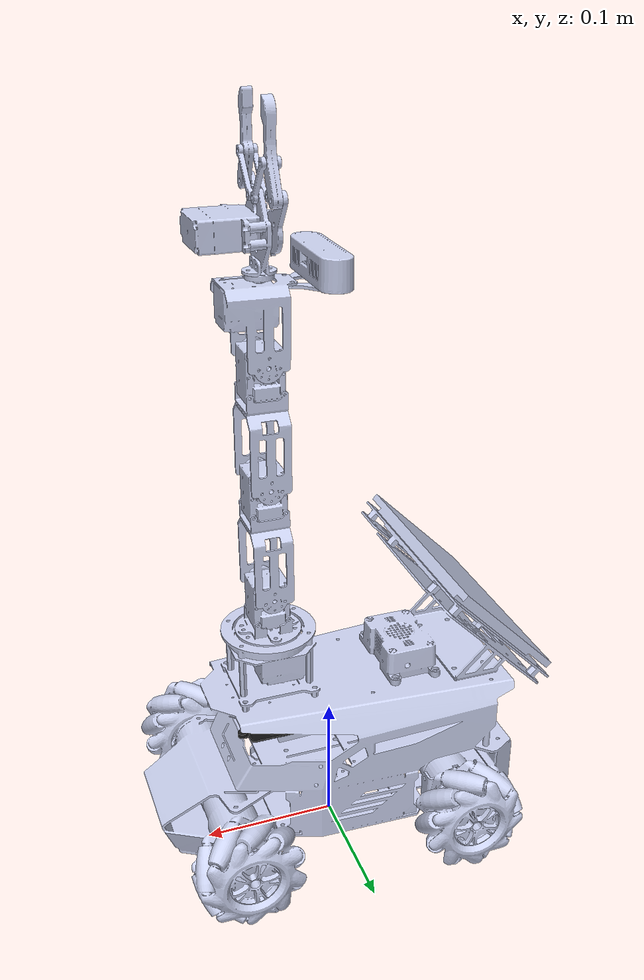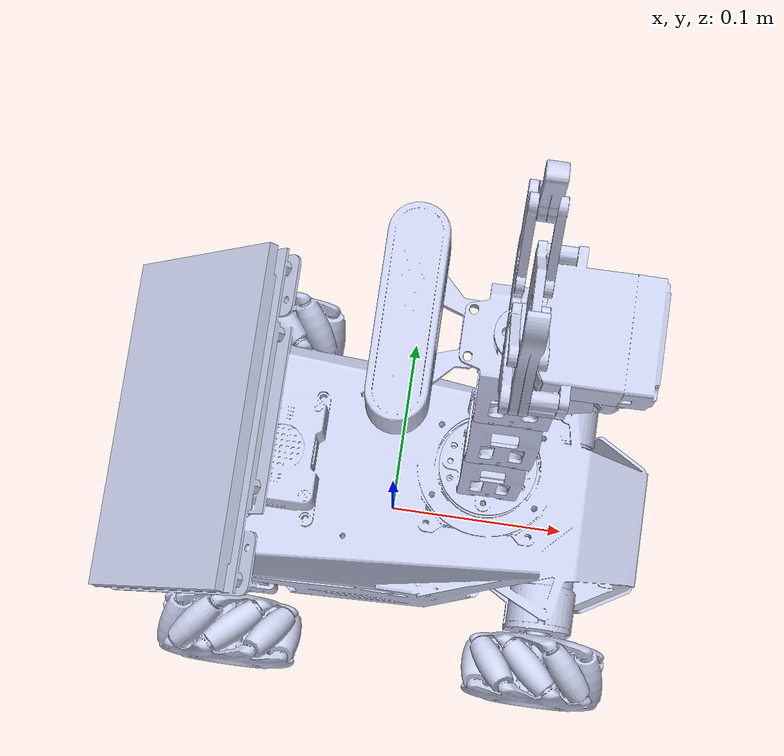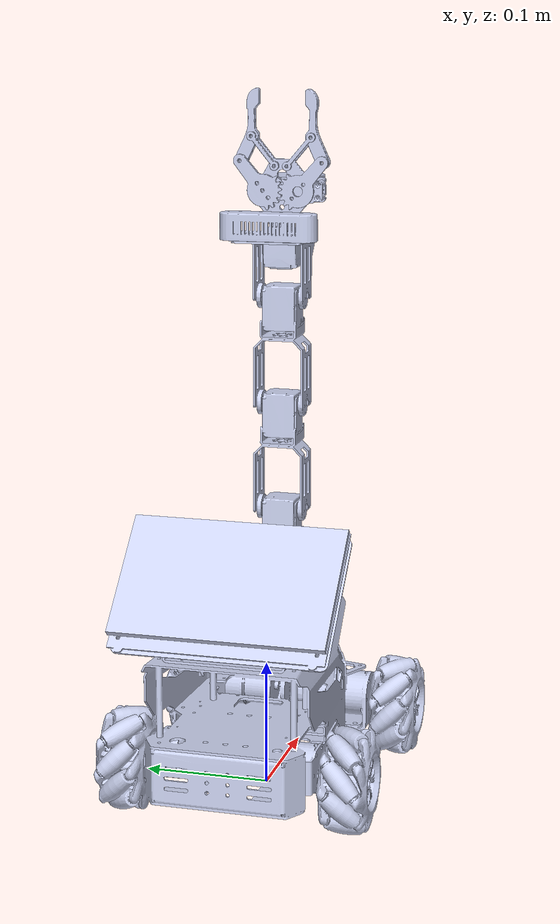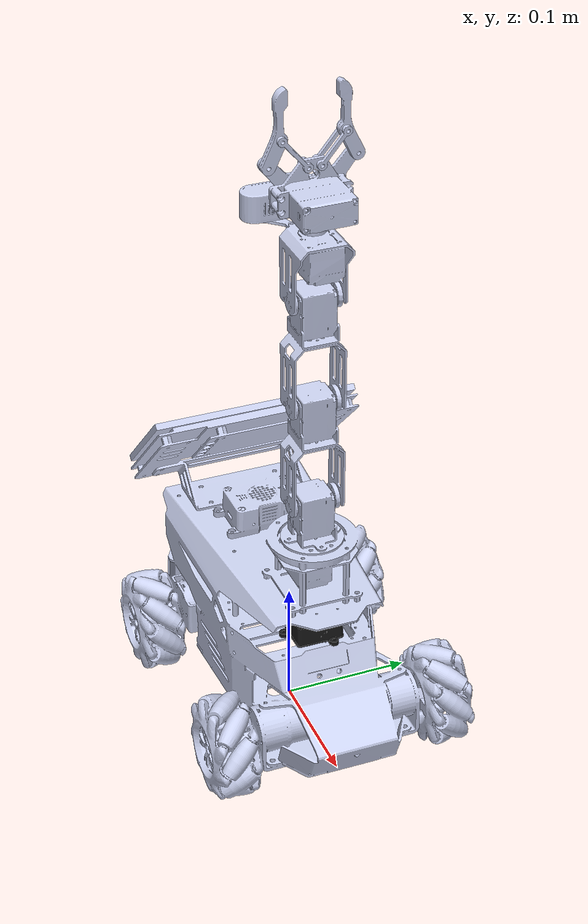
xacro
<?xml version="1.0" encoding="utf-8"?>
<robot name="rosorinpro" xmlns:xacro="http://ros.org/wiki/xacro">
    <xacro:arg name="prefix" default="" />
    <xacro:property name="lidar"        value="$(env LIDAR_TYPE)"/>
    <xacro:property name="machine"      value="$(env MACHINE_TYPE)"/>

    <xacro:include filename="$(find rosorin_description)/urdf/pro/inertial_matrix.xacro" />

    <xacro:include filename="$(find rosorin_description)/urdf/pro/car_mecanum.urdf.xacro"/>
    <xacro:include filename="$(find rosorin_description)/urdf/pro/lidar.urdf.xacro"/>

    <xacro:include filename="$(find rosorin_description)/urdf/pro/imu.urdf.xacro"/>
    <xacro:include filename="$(find rosorin_description)/urdf/pro/depth_camera.urdf.xacro"/>
    <xacro:include filename="$(find rosorin_description)/urdf/pro/arm.urdf.xacro"/>
    <xacro:include filename="$(find rosorin_description)/urdf/pro/gripper.urdf.xacro"/>
</robot>

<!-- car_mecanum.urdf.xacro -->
<robot name="car" xmlns:xacro="http://ros.org/wiki/xacro" >
  <xacro:arg name="prefix" default="" />
  <xacro:property name="M_PI"               value="3.1415926535897931"/>
  <xacro:property name="base_link_mass"     value="1.6" />
  <xacro:property name="base_link_w"        value="0.30"/>
  <xacro:property name="base_link_h"        value="0.15"/>
  <xacro:property name="base_link_d"        value="0.10"/>

  <link name="$(arg prefix)base_footprint"/>

  <joint name="base_joint" type="fixed">
    <parent link="$(arg prefix)base_footprint"/>
    <child link="$(arg prefix)base_link"/>
    <origin xyz="0.0 0.0 0.025" rpy="0 0 0"/>
  </joint>

  <link name="$(arg prefix)base_link">
    <inertial>
      <origin
        xyz="-0.0237400546330076 0.000105827287484879 0.066822140954233"
        rpy="0 0 0" />
      <mass
        value="0.808717142384399" />
      <inertia
        ixx="0.00081122049060922"
        ixy="-5.06387672227193E-07"
        ixz="-4.14284146512215E-05"
        iyy="0.000953001506912848"
        iyz="1.4848181298352E-07"
        izz="0.00147516785852103" />
    </inertial>

    <visual>
      <origin
        xyz="0 0 0"
        rpy="0 0 0" />
      <geometry>
        <mesh
          filename="package://rosorin_description/meshes/pro/mecanum/base_link.stl" />
      </geometry>
      <material name="">
        <color rgba="0.792156862745098 0.819607843137255 0.933333333333333 1" />
      </material>
    </visual>

    <collision>
      <origin
        xyz="0 0 0"
        rpy="0 0 0" />
      <geometry>
        <mesh
          filename="package://rosorin_description/meshes/pro/mecanum/base_link.stl" />
      </geometry>
    </collision>
  </link>
</robot>

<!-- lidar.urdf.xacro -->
<robot name="lidar" xmlns:xacro="http://ros.org/wiki/xacro" >
  <xacro:arg name="prefix" default="" />
  <xacro:property name="M_PI" value="3.1415926535897931"/>

  <link name="$(arg prefix)lidar_frame">
    <inertial>
      <origin
        xyz="0.000108272881438547 0.000207778482328322 -0.0259979873399523"
        rpy="0 0 0" />
      <mass
        value="0.0222221884545253" />
      <inertia
        ixx="2.86596904176027E-06"
        ixy="-1.446571060778E-07"
        ixz="1.97432308518389E-09"
        iyy="2.97121650480506E-06"
        iyz="1.02426609298088E-08"
        izz="5.05108782428573E-06" />
    </inertial>

    <visual>
      <origin
        xyz="0 0 0"
        rpy="0 0 0" />
      <geometry>
        <mesh
          filename="package://rosorin_description/meshes/pro/common/lidar_link.stl" />
      </geometry>
      <material name="black">
        <color rgba="0.1 0.1 0.1 1" />
      </material>
    </visual>

    <collision>
      <origin
        xyz="0 0 0"
        rpy="0 0 0" />
      <geometry>
        <mesh
          filename="package://rosorin_description/meshes/pro/common/lidar_link.stl" />
      </geometry>
    </collision>
  </link>

  <joint name="lidar_joint" type="fixed">
    <origin
      xyz="0.048156 7.5552E-05 0.106748"
      rpy="0 0 3.1415926535897931" />
    <parent link="$(arg prefix)base_link" />
    <child link="$(arg prefix)lidar_frame" />
    <axis xyz="0 0 0" />
  </joint>
</robot>

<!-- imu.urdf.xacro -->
<robot name="imu" xmlns:xacro="http://ros.org/wiki/xacro">
  <xacro:arg name="prefix" default="" />
  <xacro:property name="M_PI" value="3.1415926535897931"/>

  <link name="$(arg prefix)imu_link">
    <inertial>
      <origin
        xyz="0.000326339719654111 -0.00351781801658763 0.0187735276751056"
        rpy="0 0 0" />
      <mass
        value="0.808717142384399" />
      <inertia
        ixx="0.000953043729407075"
        ixy="8.78702843605923E-07"
        ixz="4.70183220493712E-06"
        iyy="0.000811220623674811"
        iyz="4.14227763073151E-05"
        izz="0.00147512550296121" />
    </inertial>
  </link>

  <joint
    name="imu_joint"
    type="fixed">
    <origin
      xyz="-0.027258 -5.6404E-05 0.048046"
      rpy="0 -0.0087266 1.5707" />
    <parent
      link="$(arg prefix)base_link" />
    <child
      link="$(arg prefix)imu_link" />
    <axis
      xyz="0 0 0" />
  </joint>

</robot>

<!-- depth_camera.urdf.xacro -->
<robot name="depth_camera" xmlns:xacro="http://ros.org/wiki/xacro" >
  <xacro:arg name="prefix" default="" />
  <xacro:property name="M_PI"   value="3.1415926535897931"/>

  <link
    name="$(arg prefix)camera_link0">
    <inertial>
      <origin
        xyz="0.00100057615929594 1.44605534389223E-07 1.72427634361517E-05"
        rpy="0 0 0" />
      <mass
        value="0.00214314154275933" />
      <inertia
        ixx="6.71206631524409E-07"
        ixy="2.63926007533042E-11"
        ixz="2.74382798718986E-09"
        iyy="1.80398903028185E-07"
        iyz="2.56942330882973E-09"
        izz="4.92322343252228E-07" />
    </inertial>
    <visual>
      <origin
        xyz="0 0 0"
        rpy="0 0 0" />
      <geometry>
        <mesh
          filename="package://rosorin_description/meshes/pro/arm/camera_connect_link.stl" />
      </geometry>
      <material
        name="">
        <color
          rgba="0.792156862745098 0.819607843137255 0.933333333333333 1" />
      </material>
    </visual>
    <collision>
      <origin
        xyz="0 0 0"
        rpy="0 0 0" />
      <geometry>
        <mesh
          filename="package://rosorin_description/meshes/pro/arm/camera_connect_link.stl" />
      </geometry>
    </collision>
  </link>

  <joint
    name="camera_connect_joint"
    type="fixed">
    <origin
      xyz="-0.036369 -0.0181 0.046638"
      rpy="-1.5621 -1.5621 1.5708" />
    <parent
      link="$(arg prefix)link4" />
    <child
      link="$(arg prefix)camera_link0" />
    <axis
      xyz="0 0 0" />
  </joint>

  <link
    name="$(arg prefix)camera_link">
    <inertial>
      <origin
        xyz="-0.0104111613223142 0.00065478513128311 -0.000176533763583344"
        rpy="0 0 0" />
      <mass
        value="0.00987601981944819" />
      <inertia
        ixx="6.06474620230947E-06"
        ixy="6.71140396207728E-09"
        ixz="2.66834042514805E-09"
        iyy="6.67626406550825E-07"
        iyz="4.50123409985515E-08"
        izz="5.75254791481401E-06" />
    </inertial>
    <visual>
      <origin
        xyz="0 0 0"
        rpy="0 0 0" />
      <geometry>
        <mesh
          filename="package://rosorin_description/meshes/pro/arm/camera_link.stl" />
      </geometry>
      <material
        name="">
        <color
          rgba="0.792156862745098 0.819607843137255 0.933333333333333 1" />
      </material>
    </visual>
    <collision>
      <origin
        xyz="0 0 0"
        rpy="0 0 0" />
      <geometry>
        <mesh
          filename="package://rosorin_description/meshes/pro/arm/camera_link.stl" />
      </geometry>
    </collision>
  </link>

  <joint
    name="camera_joint"
    type="fixed">
    <origin
      xyz="0.022511 -0.0010257 0.0051917"
      rpy="0 0 0" />
    <parent
      link="$(arg prefix)camera_link0" />
    <child
      link="$(arg prefix)camera_link" />
    <axis
      xyz="0 0 0" />
  </joint>

  <link name="$(arg prefix)depth_cam_frame" />
  <joint
    name="depth_cam_joint_sim"
    type="fixed">
    <origin
      xyz="0 0 0"
      rpy="${-M_PI/2} 0 ${-M_PI/2}" />
    <parent
      link="$(arg prefix)camera_link" />
    <child
      link="$(arg prefix)depth_cam_frame" />
  </joint>

</robot>

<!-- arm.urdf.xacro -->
<robot name="arm" xmlns:xacro="http://ros.org/wiki/xacro">
  <xacro:arg name="prefix" default="" />
  <xacro:property name="M_PI"   value="3.1415926535897931"/>

  <link
    name="$(arg prefix)link1">
    <inertial>
      <origin
        xyz="6.49037759326426E-05 0.00239407542452911 0.0110195047829908"
        rpy="0 0 0" />
      <mass
        value="0.010597277181335" />
      <inertia
        ixx="1.46240263881777E-06"
        ixy="-4.78262881626278E-09"
        ixz="7.11910436984689E-09"
        iyy="1.81010848614845E-06"
        iyz="-2.88588688247835E-08"
        izz="1.87119457153925E-06" />
    </inertial>
    <visual>
      <origin
        xyz="0 0 0"
        rpy="0 0 0" />
      <geometry>
        <mesh
          filename="file://$(find rosorin_description)/meshes/pro/arm/link1.stl" />
      </geometry>
      <material
        name="">
        <color
          rgba="0.792156862745098 0.819607843137255 0.933333333333333 1" />
      </material>
    </visual>
    <collision>
      <origin
        xyz="0 0 0"
        rpy="0 0 0" />
      <geometry>
        <mesh
          filename="file://$(find rosorin_description)/meshes/pro/arm/link1.stl" />
      </geometry>
    </collision>
  </link>

  <gazebo reference="$(arg prefix)base_link">
    <material>Gazebo/Grey</material>
    <mu1>0.2</mu1>
    <mu2>0.2</mu2>
    <self_collide>false</self_collide>
  </gazebo>

  <joint
    name="joint1"
    type="revolute">
    <origin
      xyz="0.04662 7.5437E-05 0.16044"
      rpy="0.0087266 0 0" />
    <parent
      link="$(arg prefix)base_link" />
    <child
      link="$(arg prefix)link1" />
    <axis
      xyz="-5.4513E-05 -0.0087266 -0.99996" />
    <limit
      lower="-2.09"
      upper="2.09"
      effort="1000"
      velocity="10" />
  </joint>

  <link
    name="$(arg prefix)link2">
    <inertial>
      <origin
        xyz="0.000202046656795941 -0.0165522680567203 0.0481618179233159"
        rpy="0 0 0" />
      <mass
        value="0.0136322197327749" />
      <inertia
        ixx="3.65656868148961E-06"
        ixy="-4.89058741962216E-09"
        ixz="3.19797719203556E-09"
        iyy="3.1366082581851E-06"
        iyz="-3.55846346498633E-08"
        izz="2.4183678227792E-06" />
    </inertial>
    <visual>
      <origin
        xyz="0 0 0"
        rpy="0 0 0" />
      <geometry>
        <mesh
          filename="file://$(find rosorin_description)/meshes/pro/arm/link2.stl" />
      </geometry>
      <material
        name="">
        <color
          rgba="0.792156862745098 0.819607843137255 0.933333333333333 1" />
      </material>
    </visual>
    <collision>
      <origin
        xyz="0 0 0"
        rpy="0 0 0" />
      <geometry>
        <mesh
          filename="file://$(find rosorin_description)/meshes/pro/arm/link2.stl" />
      </geometry>
    </collision>
  </link>

  <joint
    name="joint2"
    type="revolute">
    <origin
      xyz="1.2011E-05 0.018766 0.030345"
      rpy="0 0 0" />
    <parent
      link="$(arg prefix)link1" />
    <child
      link="$(arg prefix)link2" />
    <axis
      xyz="0 0.99996 -0.0087265" />
    <limit
      lower="-2.09"
      upper="2.09"
      effort="1000"
      velocity="10" />
  </joint>

  <link
    name="$(arg prefix)link3">
    <inertial>
      <origin
        xyz="-0.000248379360253626 -0.016552274463385 0.0481616278776934"
        rpy="0 0 0" />
      <mass
        value="0.0136322449843806" />
      <inertia
        ixx="3.65640771045542E-06"
        ixy="-4.52089983676596E-09"
        ixz="1.4805893818475E-08"
        iyy="3.13662596679787E-06"
        iyz="-3.5627525860988E-08"
        izz="2.41855475274639E-06" />
    </inertial>
    <visual>
      <origin
        xyz="0 0 0"
        rpy="0 0 0" />
      <geometry>
        <mesh
          filename="file://$(find rosorin_description)/meshes/pro/arm/link3.stl" />
      </geometry>
      <material
        name="">
        <color
          rgba="0.792156862745098 0.819607843137255 0.933333333333333 1" />
      </material>
    </visual>
    <collision>
      <origin
        xyz="0 0 0"
        rpy="0 0 0" />
      <geometry>
        <mesh
          filename="file://$(find rosorin_description)/meshes/pro/arm/link3.stl" />
      </geometry>
    </collision>
  </link>

  <joint
    name="joint3"
    type="revolute">
    <origin
      xyz="0.00025563 0.00074282 0.08513"
      rpy="0 0 0" />
    <parent
      link="$(arg prefix)link2" />
    <child
      link="$(arg prefix)link3" />
    <axis
      xyz="0 1 0" />
    <limit
      lower="-2.09"
      upper="2.09"
      effort="1000"
      velocity="10" />
  </joint>

  <link
    name="$(arg prefix)link4">
    <inertial>
      <origin
        xyz="0.00401889070001946 -0.0185055710062145 0.0267467820937604"
        rpy="0 0 0" />
      <mass
        value="0.0125542777381369" />
      <inertia
        ixx="3.42302406002793E-06"
        ixy="-8.26448821832188E-09"
        ixz="-1.3188503984044E-07"
        iyy="2.90651238927709E-06"
        iyz="8.54505947394019E-09"
        izz="3.34228552880687E-06" />
    </inertial>
    <visual>
      <origin
        xyz="0 0 0"
        rpy="0 0 0" />
      <geometry>
        <mesh
          filename="file://$(find rosorin_description)/meshes/pro/arm/link4.stl" />
      </geometry>
      <material
        name="">
        <color
          rgba="0.792156862745098 0.819607843137255 0.933333333333333 1" />
      </material>
    </visual>
    <collision>
      <origin
        xyz="0 0 0"
        rpy="0 0 0" />
      <geometry>
        <mesh
          filename="file://$(find rosorin_description)/meshes/pro/arm/link4.stl" />
      </geometry>
    </collision>
  </link>

  <joint
    name="joint4"
    type="revolute">
    <origin
      xyz="-0.00056892 0.00074297 0.085147"
      rpy="0 0 0" />
    <parent
      link="$(arg prefix)link3" />
    <child
      link="$(arg prefix)link4" />
    <axis
      xyz="0 1 0" />
    <limit
      lower="-2.09"
      upper="2.09"
      effort="1000"
      velocity="10" />
  </joint>

  <link
    name="$(arg prefix)link5">
    <inertial>
      <origin
        xyz="4.95037712668067E-06 9.72914927224386E-09 -0.0020019811095377"
        rpy="0 0 0" />
      <mass
        value="0.00094700314670666" />
      <inertia
        ixx="2.17248160164777E-08"
        ixy="3.02198013430078E-14"
        ixz="-4.76292817428858E-11"
        iyy="2.17243959579653E-08"
        iyz="7.04450794385081E-14"
        izz="4.04666808778697E-08" />
    </inertial>
    <visual>
      <origin
        xyz="0 0 0"
        rpy="0 0 0" />
      <geometry>
        <mesh
          filename="file://$(find rosorin_description)/meshes/pro/arm/link5.stl" />
      </geometry>
      <material
        name="">
        <color
          rgba="0.792156862745098 0.819607843137255 0.933333333333333 1" />
      </material>
    </visual>
    <collision>
      <origin
        xyz="0 0 0"
        rpy="0 0 0" />
      <geometry>
        <mesh
          filename="file://$(find rosorin_description)/meshes/pro/arm/link5.stl" />
      </geometry>
    </collision>
  </link>

  <joint
    name="joint5"
    type="revolute">
    <origin
      xyz="-0.0010116 -0.018014 0.05577"
      rpy="0 0 0" />
    <parent
      link="$(arg prefix)link4" />
    <child
      link="$(arg prefix)link5" />
    <axis
      xyz="0 0 -1" />
    <limit
      lower="-2.09"
      upper="2.09"
      effort="1000"
      velocity="10" />
  </joint>

  <link
    name="$(arg prefix)gripper_link">
    <inertial>
      <origin
        xyz="0.0231313386895878 -0.00393552713010837 -0.0156882339564593"
        rpy="0 0 0" />
      <mass
        value="0.0262978257351592" />
      <inertia
        ixx="3.95387110327665E-06"
        ixy="-1.19832857387574E-12"
        ixz="2.46427244487644E-12"
        iyy="1.3233558568295E-06"
        iyz="1.37213951357202E-08"
        izz="4.22515071659295E-06" />
    </inertial>
    <visual>
      <origin
        xyz="0 0 0"
        rpy="0 0 0" />
      <geometry>
        <mesh
          filename="file://$(find rosorin_description)/meshes/pro/arm/gripper_link.stl" />
      </geometry>
      <material
        name="">
        <color
          rgba="0.792156862745098 0.819607843137255 0.933333333333333 1" />
      </material>
    </visual>
    <collision>
      <origin
        xyz="0 0 0"
        rpy="0 0 0" />
      <geometry>
        <mesh
          filename="file://$(find rosorin_description)/meshes/pro/arm/gripper_link.stl" />
      </geometry>
    </collision>
  </link>

  <joint
    name="gripper_joint"
    type="fixed">
    <origin
      xyz="0 0 0.0030019"
      rpy="-3.1416 -1.5681 3.1416" />
    <parent
      link="$(arg prefix)link5" />
    <child
      link="$(arg prefix)gripper_link" />
    <axis
      xyz="0 0 0" />
  </joint>

  <link name="$(arg prefix)end_effector_link" />

  <joint name="end_effector_joint" type="fixed">
    <origin xyz="0 0 0.08" rpy="0 0 0"/>
    <parent link="$(arg prefix)link5"/>
    <child link="$(arg prefix)end_effector_link"/>
  </joint>

</robot>

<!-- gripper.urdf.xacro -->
<robot name="gripper" xmlns:xacro="http://ros.org/wiki/xacro">
  <xacro:arg name="prefix" default="" />
  <xacro:property name="M_PI"   value="3.1415926535897931"/>

  <link
    name="$(arg prefix)l_link">
    <inertial>
      <origin
        xyz="0.00148743912658827 0.00341169661084672 0.00471012520857783"
        rpy="0 0 0" />
      <mass
        value="0.00218044330527644" />
      <inertia
        ixx="4.02720359212291E-07"
        ixy="3.34198378263559E-10"
        ixz="5.68156737571048E-10"
        iyy="2.1623095083852E-07"
        iyz="-1.25262871580288E-07"
        izz="1.89756285706319E-07" />
    </inertial>
    <visual>
      <origin
        xyz="0 0 0"
        rpy="0 0 0" />
      <geometry>
        <mesh
          filename="package://rosorin_description/meshes/pro/gripper/l_link.stl" />
      </geometry>
      <material
        name="">
        <color
          rgba="0.792156862745098 0.819607843137255 0.933333333333333 1" />
      </material>
    </visual>
    <collision>
      <origin
        xyz="0 0 0"
        rpy="0 0 0" />
      <geometry>
        <mesh
          filename="package://rosorin_description/meshes/pro/gripper/l_link.stl" />
      </geometry>
    </collision>
  </link>

  <joint
    name="l_joint"
    type="revolute">
    <origin
      xyz="0.024 0.014 0.0075"
      rpy="3.1416 1.5681 3.1416" />
    <parent
      link="$(arg prefix)gripper_link" />
    <child
      link="$(arg prefix)l_link" />
    <axis
      xyz="-1 0 -0.0026676" />
    <limit
      lower="-1.57"
      upper="1.57"
      effort="1000"
      velocity="10" />
    <mimic
      joint="r_joint"
      multiplier="1"
      offset="0" />
  </joint>

  <link
    name="$(arg prefix)r_link">
    <inertial>
      <origin
        xyz="3.12874685205605E-05 -0.00354612415983978 0.00514949484857297"
        rpy="0 0 0" />
      <mass
        value="0.00205911712924402" />
      <inertia
        ixx="3.94904126102227E-07"
        ixy="7.38490943551972E-10"
        ixz="-1.26593989714032E-09"
        iyy="2.11639261333732E-07"
        iyz="1.2112428327253E-07"
        izz="1.86362082133903E-07" />
    </inertial>
    <visual>
      <origin
        xyz="0 0 0"
        rpy="0 0 0" />
      <geometry>
        <mesh
          filename="package://rosorin_description/meshes/pro/gripper/r_link.stl" />
      </geometry>
      <material
        name="">
        <color
          rgba="0.792156862745098 0.819607843137255 0.933333333333333 1" />
      </material>
    </visual>
    <collision>
      <origin
        xyz="0 0 0"
        rpy="0 0 0" />
      <geometry>
        <mesh
          filename="package://rosorin_description/meshes/pro/gripper/r_link.stl" />
      </geometry>
    </collision>
  </link>

  <joint
    name="r_joint"
    type="revolute">
    <origin
      xyz="0.024 -0.014 0.0061523"
      rpy="-0.0038422 1.5647 -0.012569" />
    <parent
      link="$(arg prefix)gripper_link" />
    <child
      link="$(arg prefix)r_link" />
    <axis
      xyz="0.99998 1.524E-05 -0.0060469" />
    <limit
      lower="-1.57"
      upper="1.57"
      effort="1000"
      velocity="10" />
  </joint>

  <link
    name="$(arg prefix)l_in_link">
    <inertial>
      <origin
        xyz="0.00597034776510662 0.00932041799710385 0.0111236125891843"
        rpy="0 0 0" />
      <mass
        value="0.000770694679684047" />
      <inertia
        ixx="9.79339488419287E-08"
        ixy="1.24325296468498E-10"
        ixz="1.51027104705311E-10"
        iyy="5.77546513196515E-08"
        iyz="-4.66053058184523E-08"
        izz="4.1319450328664E-08" />
    </inertial>
    <visual>
      <origin
        xyz="0 0 0"
        rpy="0 0 0" />
      <geometry>
        <mesh
          filename="package://rosorin_description/meshes/pro/gripper/l_in_link.stl" />
      </geometry>
      <material
        name="">
        <color
          rgba="0.792156862745098 0.819607843137255 0.933333333333333 1" />
      </material>
    </visual>
    <collision>
      <origin
        xyz="0 0 0"
        rpy="0 0 0" />
      <geometry>
        <mesh
          filename="package://rosorin_description/meshes/pro/gripper/l_in_link.stl" />
      </geometry>
    </collision>
  </link>

  <joint
    name="l_in_joint"
    type="revolute">
    <origin
      xyz="0.042974 0.005 0.0075"
      rpy="3.1416 1.5681 3.1416" />
    <parent
      link="$(arg prefix)gripper_link" />
    <child
      link="$(arg prefix)l_in_link" />
    <axis
      xyz="1 0 0.0026676" />
    <limit
      lower="-1.57"
      upper="1.57"
      effort="1000"
      velocity="10" />
    <mimic
      joint="r_joint"
      multiplier="-1"
      offset="0" />
  </joint>

  <link
    name="$(arg prefix)l_out_link">
    <inertial>
      <origin
        xyz="0.00297829965037884 0.00203214677519615 0.00755647290494355"
        rpy="0 0 0" />
      <mass
        value="0.00342111250174668" />
      <inertia
        ixx="7.64461150761982E-07"
        ixy="-3.387168093057E-10"
        ixz="1.88717673447383E-09"
        iyy="7.17069170385372E-07"
        iyz="1.26981454846648E-07"
        izz="5.69917196970889E-08" />
    </inertial>
    <visual>
      <origin
        xyz="0 0 0"
        rpy="0 0 0" />
      <geometry>
        <mesh
          filename="package://rosorin_description/meshes/pro/gripper/l_out_link.stl" />
      </geometry>
      <material
        name="">
        <color
          rgba="0.792156862745098 0.819607843137255 0.933333333333333 1" />
      </material>
    </visual>
    <collision>
      <origin
        xyz="0 0 0"
        rpy="0 0 0" />
      <geometry>
        <mesh
          filename="package://rosorin_description/meshes/pro/gripper/l_out_link.stl" />
      </geometry>
    </collision>
  </link>

  <joint
    name="l_out_joint"
    type="revolute">
    <origin
      xyz="0.0029407 0.018641 0.022223"
      rpy="0 0 0" />
    <parent
      link="$(arg prefix)l_in_link" />
    <child
      link="$(arg prefix)l_out_link" />
    <axis
      xyz="1 0 0.0026676" />
    <limit
      lower="-1.57"
      upper="1.57"
      effort="1000"
      velocity="10" />
    <mimic
      joint="r_joint"
      multiplier="1"
      offset="0" />
  </joint>

  <link
    name="$(arg prefix)r_in_link">
    <inertial>
      <origin
        xyz="0.00597034615265452 -0.0093204191791146 0.0111236115770927"
        rpy="0 0 0" />
      <mass
        value="0.00077069374465374" />
      <inertia
        ixx="9.79339240943491E-08"
        ixy="-1.24323923307194E-10"
        ixz="1.51028199204801E-10"
        iyy="5.77546354280507E-08"
        iyz="4.66052950953177E-08"
        izz="4.13194382258245E-08" />
    </inertial>
    <visual>
      <origin
        xyz="0 0 0"
        rpy="0 0 0" />
      <geometry>
        <mesh
          filename="package://rosorin_description/meshes/pro/gripper/r_in_link.stl" />
      </geometry>
      <material
        name="">
        <color
          rgba="0.792156862745098 0.819607843137255 0.933333333333333 1" />
      </material>
    </visual>
    <collision>
      <origin
        xyz="0 0 0"
        rpy="0 0 0" />
      <geometry>
        <mesh
          filename="package://rosorin_description/meshes/pro/gripper/r_in_link.stl" />
      </geometry>
    </collision>
  </link>

  <joint
    name="r_in_joint"
    type="revolute">
    <origin
      xyz="0.042974 -0.005 0.0075"
      rpy="3.1416 1.5681 3.1416" />
    <parent
      link="$(arg prefix)gripper_link" />
    <child
      link="$(arg prefix)r_in_link" />
    <axis
      xyz="1 0 0.0026676" />
    <limit
      lower="-1.57"
      upper="1.57"
      effort="1000"
      velocity="10" />
    <mimic
      joint="r_joint"
      multiplier="1"
      offset="0" />
  </joint>

  <link
    name="$(arg prefix)r_out_link">
    <inertial>
      <origin
        xyz="0.00596395964781463 -0.00207383049329325 0.00756447899976997"
        rpy="0 0 0" />
      <mass
        value="0.00342111281237453" />
      <inertia
        ixx="7.6446508624845E-07"
        ixy="7.8016814967912E-12"
        ixz="1.0004696825877E-09"
        iyy="7.17066320909273E-07"
        iyz="-1.26991785278565E-07"
        izz="5.69917807641566E-08" />
    </inertial>
    <visual>
      <origin
        xyz="0 0 0"
        rpy="0 0 0" />
      <geometry>
        <mesh
          filename="package://rosorin_description/meshes/pro/gripper/r_out_link.stl" />
      </geometry>
      <material
        name="">
        <color
          rgba="0.792156862745098 0.819607843137255 0.933333333333333 1" />
      </material>
    </visual>
    <collision>
      <origin
        xyz="0 0 0"
        rpy="0 0 0" />
      <geometry>
        <mesh
          filename="package://rosorin_description/meshes/pro/gripper/r_out_link.stl" />
      </geometry>
    </collision>
  </link>

  <joint
    name="r_out_joint"
    type="revolute">
    <origin
      xyz="-5.9262E-05 -0.018641 0.022215"
      rpy="0 0 0.0069813" />
    <parent
      link="$(arg prefix)r_in_link" />
    <child
      link="$(arg prefix)r_out_link" />
    <axis
      xyz="0.99997 -0.0069812 0.0026676" />
    <limit
      lower="-1.57"
      upper="1.57"
      effort="1000"
      velocity="10" />
    <mimic
      joint="r_joint"
      multiplier="-1"
      offset="0" />
  </joint>

</robot>
